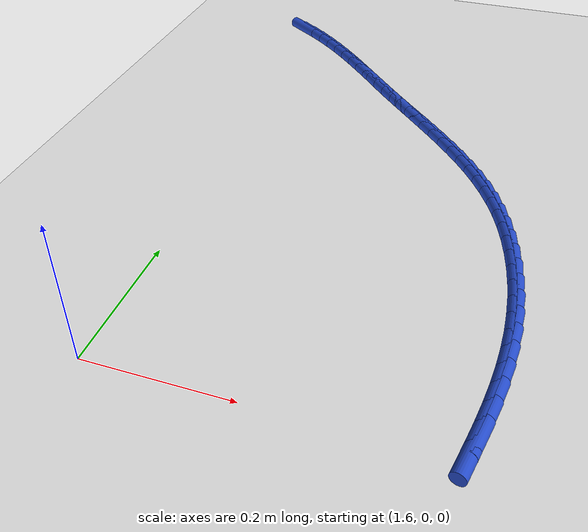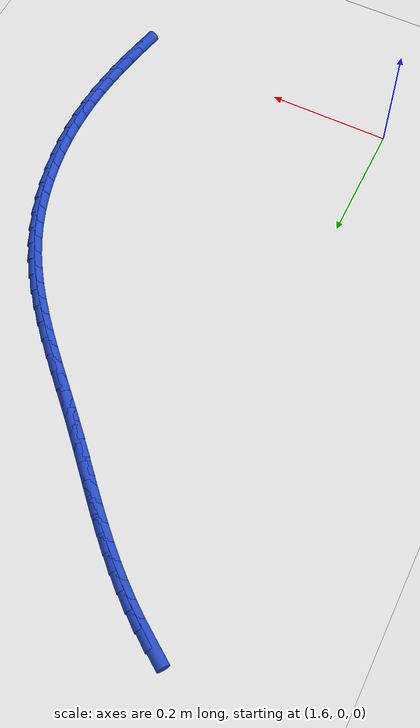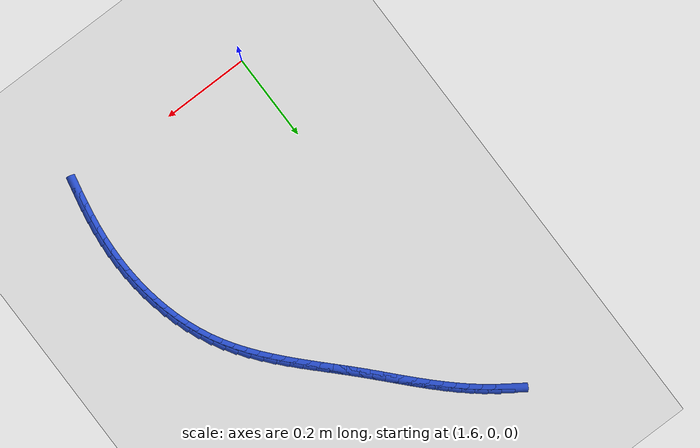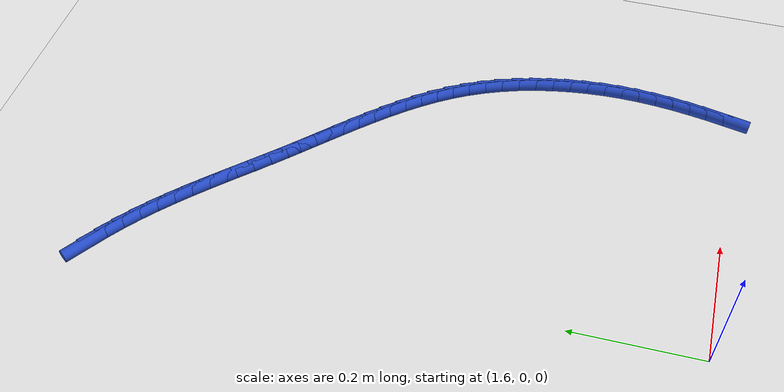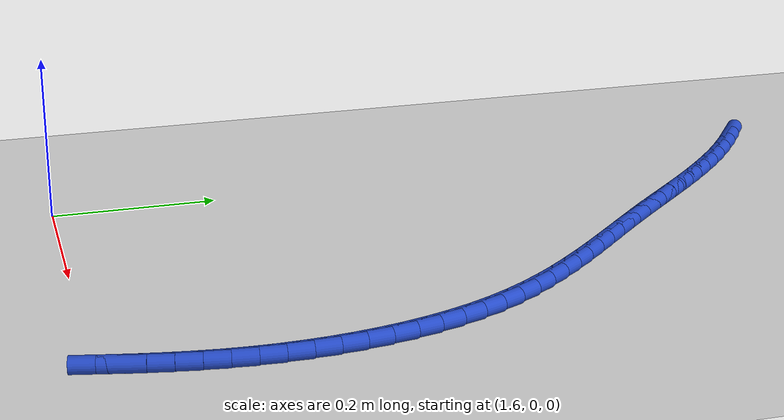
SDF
<sdf version="1.6">
 <world name="default">
  <model name="ground_plane">
   <static>1</static>
   <link name="link">
    <collision name="collision">
     <geometry><plane><normal>0 0 1</normal><size>100 100</size></plane></geometry>
     <surface><friction><ode><mu>100</mu><mu2>50</mu2></ode></friction></surface>
    </collision>
    <visual name="visual">
     <cast_shadows>0</cast_shadows>
     <geometry><plane><normal>0 0 1</normal><size>100 100</size></plane></geometry>
     <material>
      <script><uri>file://media/materials/scripts/gazebo.material</uri><name>Gazebo/WhiteGlow</name></script>
     </material>
    </visual>
   </link>
  </model>
  <model name="line">
   <link name="link_77">
    <pose>1.5682867667261404 0.9114962757041402 0.01 0 1.57 -0.6044896652329141</pose>
    <collision name="collision">
     <geometry><cylinder><radius>0.01</radius><length>0.08</length></cylinder></geometry>
    </collision>
    <visual name="visual">
     <material>
      <script><name>Gazebo/Blue</name><uri>file://media/materials/scripts/gazebo.material</uri></script>
     </material>
     <geometry><cylinder><radius>0.01</radius><length>0.08</length></cylinder></geometry>
    </visual>
   </link>
   <link name="link_78">
    <pose>1.592056744550094 0.8950772067291684 0.01 0 1.57 -0.6470245929640308</pose>
    <collision name="collision">
     <geometry><cylinder><radius>0.01</radius><length>0.08</length></cylinder></geometry>
    </collision>
    <visual name="visual">
     <material>
      <script><name>Gazebo/Blue</name><uri>file://media/materials/scripts/gazebo.material</uri></script>
     </material>
     <geometry><cylinder><radius>0.01</radius><length>0.08</length></cylinder></geometry>
    </visual>
   </link>
   <link name="link_79">
    <pose>1.615005606845643 0.8777388810431573 0.01 0 1.57 -0.6879267266521453</pose>
    <collision name="collision">
     <geometry><cylinder><radius>0.01</radius><length>0.08</length></cylinder></geometry>
    </collision>
    <visual name="visual">
     <material>
      <script><name>Gazebo/Blue</name><uri>file://media/materials/scripts/gazebo.material</uri></script>
     </material>
     <geometry><cylinder><radius>0.01</radius><length>0.08</length></cylinder></geometry>
    </visual>
   </link>
   <link name="link_80">
    <pose>1.6371027071436326 0.8595782353255519 0.01 0 1.57 -0.7242293383095271</pose>
    <collision name="collision">
     <geometry><cylinder><radius>0.01</radius><length>0.08</length></cylinder></geometry>
    </collision>
    <visual name="visual">
     <material>
      <script><name>Gazebo/Blue</name><uri>file://media/materials/scripts/gazebo.material</uri></script>
     </material>
     <geometry><cylinder><radius>0.01</radius><length>0.08</length></cylinder></geometry>
    </visual>
   </link>
   <link name="link_81">
    <pose>1.6584449856113266 0.840699313508609 0.01 0 1.57 -0.7549935278005324</pose>
    <collision name="collision">
     <geometry><cylinder><radius>0.01</radius><length>0.08</length></cylinder></geometry>
    </collision>
    <visual name="visual">
     <material>
      <script><name>Gazebo/Blue</name><uri>file://media/materials/scripts/gazebo.material</uri></script>
     </material>
     <geometry><cylinder><radius>0.01</radius><length>0.08</length></cylinder></geometry>
    </visual>
   </link>
   <link name="link_82">
    <pose>1.679159292805781 0.8212078256920491 0.01 0 1.57 -0.7800553993562066</pose>
    <collision name="collision">
     <geometry><cylinder><radius>0.01</radius><length>0.08</length></cylinder></geometry>
    </collision>
    <visual name="visual">
     <material>
      <script><name>Gazebo/Blue</name><uri>file://media/materials/scripts/gazebo.material</uri></script>
     </material>
     <geometry><cylinder><radius>0.01</radius><length>0.08</length></cylinder></geometry>
    </visual>
   </link>
   <link name="link_83">
    <pose>1.69937247928405 0.8012094819755896 0.01 0 1.57 -0.7993285596081043</pose>
    <collision name="collision">
     <geometry><cylinder><radius>0.01</radius><length>0.08</length></cylinder></geometry>
    </collision>
    <visual name="visual">
     <material>
      <script><name>Gazebo/Blue</name><uri>file://media/materials/scripts/gazebo.material</uri></script>
     </material>
     <geometry><cylinder><radius>0.01</radius><length>0.08</length></cylinder></geometry>
    </visual>
   </link>
   <link name="link_84">
    <pose>1.71921139560319 0.7808099924589503 0.01 0 1.57 -0.8127809053826225</pose>
    <collision name="collision">
     <geometry><cylinder><radius>0.01</radius><length>0.08</length></cylinder></geometry>
    </collision>
    <visual name="visual">
     <material>
      <script><name>Gazebo/Blue</name><uri>file://media/materials/scripts/gazebo.material</uri></script>
     </material>
     <geometry><cylinder><radius>0.01</radius><length>0.08</length></cylinder></geometry>
    </visual>
   </link>
   <link name="link_85">
    <pose>1.7388028923202565 0.7601150672418497 0.01 0 1.57 -0.8204155094203941</pose>
    <collision name="collision">
     <geometry><cylinder><radius>0.01</radius><length>0.08</length></cylinder></geometry>
    </collision>
    <visual name="visual">
     <material>
      <script><name>Gazebo/Blue</name><uri>file://media/materials/scripts/gazebo.material</uri></script>
     </material>
     <geometry><cylinder><radius>0.01</radius><length>0.08</length></cylinder></geometry>
    </visual>
   </link>
   <link name="link_86">
    <pose>1.7582738199923031 0.7392304164240063 0.01 0 1.57 -0.8222568453401549</pose>
    <collision name="collision">
     <geometry><cylinder><radius>0.01</radius><length>0.08</length></cylinder></geometry>
    </collision>
    <visual name="visual">
     <material>
      <script><name>Gazebo/Blue</name><uri>file://media/materials/scripts/gazebo.material</uri></script>
     </material>
     <geometry><cylinder><radius>0.01</radius><length>0.08</length></cylinder></geometry>
    </visual>
   </link>
   <link name="link_87">
    <pose>1.7777510291763865 0.7182617501051395 0.01 0 1.57 -0.8183428227736026</pose>
    <collision name="collision">
     <geometry><cylinder><radius>0.01</radius><length>0.08</length></cylinder></geometry>
    </collision>
    <visual name="visual">
     <material>
      <script><name>Gazebo/Blue</name><uri>file://media/materials/scripts/gazebo.material</uri></script>
     </material>
     <geometry><cylinder><radius>0.01</radius><length>0.08</length></cylinder></geometry>
    </visual>
   </link>
   <link name="link_88">
    <pose>1.7973613704295617 0.6973147783849672 0.01 0 1.57 -0.8088087375363433</pose>
    <collision name="collision">
     <geometry><cylinder><radius>0.01</radius><length>0.08</length></cylinder></geometry>
    </collision>
    <visual name="visual">
     <material>
      <script><name>Gazebo/Blue</name><uri>file://media/materials/scripts/gazebo.material</uri></script>
     </material>
     <geometry><cylinder><radius>0.01</radius><length>0.08</length></cylinder></geometry>
    </visual>
   </link>
   <link name="link_89">
    <pose>1.8172296518475908 0.6764937631135937 0.01 0 1.57 -0.7984078438088076</pose>
    <collision name="collision">
     <geometry><cylinder><radius>0.01</radius><length>0.08</length></cylinder></geometry>
    </collision>
    <visual name="visual">
     <material>
      <script><name>Gazebo/Blue</name><uri>file://media/materials/scripts/gazebo.material</uri></script>
     </material>
     <geometry><cylinder><radius>0.01</radius><length>0.08</length></cylinder></geometry>
    </visual>
   </link>
   <link name="link_90">
    <pose>1.8373688205118024 0.6558236487647257 0.01 0 1.57 -0.7941465284990479</pose>
    <collision name="collision">
     <geometry><cylinder><radius>0.01</radius><length>0.08</length></cylinder></geometry>
    </collision>
    <visual name="visual">
     <material>
      <script><name>Gazebo/Blue</name><uri>file://media/materials/scripts/gazebo.material</uri></script>
     </material>
     <geometry><cylinder><radius>0.01</radius><length>0.08</length></cylinder></geometry>
    </visual>
   </link>
   <link name="link_91">
    <pose>1.8576243195740088 0.6352106076706552 0.01 0 1.57 -0.7965571766507521</pose>
    <collision name="collision">
     <geometry><cylinder><radius>0.01</radius><length>0.08</length></cylinder></geometry>
    </collision>
    <visual name="visual">
     <material>
      <script><name>Gazebo/Blue</name><uri>file://media/materials/scripts/gazebo.material</uri></script>
     </material>
     <geometry><cylinder><radius>0.01</radius><length>0.08</length></cylinder></geometry>
    </visual>
   </link>
   <link name="link_92">
    <pose>1.8778278492958915 0.6145510674818936 0.01 0 1.57 -0.8056526328374921</pose>
    <collision name="collision">
     <geometry><cylinder><radius>0.01</radius><length>0.08</length></cylinder></geometry>
    </collision>
    <visual name="visual">
     <material>
      <script><name>Gazebo/Blue</name><uri>file://media/materials/scripts/gazebo.material</uri></script>
     </material>
     <geometry><cylinder><radius>0.01</radius><length>0.08</length></cylinder></geometry>
    </visual>
   </link>
   <link name="link_93">
    <pose>1.8978111099391344 0.5937414558489542 0.01 0 1.57 -0.821502431916797</pose>
    <collision name="collision">
     <geometry><cylinder><radius>0.01</radius><length>0.08</length></cylinder></geometry>
    </collision>
    <visual name="visual">
     <material>
      <script><name>Gazebo/Blue</name><uri>file://media/materials/scripts/gazebo.material</uri></script>
     </material>
     <geometry><cylinder><radius>0.01</radius><length>0.08</length></cylinder></geometry>
    </visual>
   </link>
   <link name="link_94">
    <pose>1.9174058017654207 0.5726782004223492 0.01 0 1.57 -0.8442216882590298</pose>
    <collision name="collision">
     <geometry><cylinder><radius>0.01</radius><length>0.08</length></cylinder></geometry>
    </collision>
    <visual name="visual">
     <material>
      <script><name>Gazebo/Blue</name><uri>file://media/materials/scripts/gazebo.material</uri></script>
     </material>
     <geometry><cylinder><radius>0.01</radius><length>0.08</length></cylinder></geometry>
    </visual>
   </link>
   <link name="link_95">
    <pose>1.9364436250364327 0.5512577288525914 0.01 0 1.57 -0.8739506819774797</pose>
    <collision name="collision">
     <geometry><cylinder><radius>0.01</radius><length>0.08</length></cylinder></geometry>
    </collision>
    <visual name="visual">
     <material>
      <script><name>Gazebo/Blue</name><uri>file://media/materials/scripts/gazebo.material</uri></script>
     </material>
     <geometry><cylinder><radius>0.01</radius><length>0.08</length></cylinder></geometry>
    </visual>
   </link>
   <link name="link_96">
    <pose>1.9547562800138545 0.5293764687901931 0.01 0 1.57 -0.9108232896030182</pose>
    <collision name="collision">
     <geometry><cylinder><radius>0.01</radius><length>0.08</length></cylinder></geometry>
    </collision>
    <visual name="visual">
     <material>
      <script><name>Gazebo/Blue</name><uri>file://media/materials/scripts/gazebo.material</uri></script>
     </material>
     <geometry><cylinder><radius>0.01</radius><length>0.08</length></cylinder></geometry>
    </visual>
   </link>
   <link name="link_97">
    <pose>1.9721754669593676 0.5069308478856672 0.01 0 1.57 -0.9549224907482865</pose>
    <collision name="collision">
     <geometry><cylinder><radius>0.01</radius><length>0.08</length></cylinder></geometry>
    </collision>
    <visual name="visual">
     <material>
      <script><name>Gazebo/Blue</name><uri>file://media/materials/scripts/gazebo.material</uri></script>
     </material>
     <geometry><cylinder><radius>0.01</radius><length>0.08</length></cylinder></geometry>
    </visual>
   </link>
   <link name="link_98">
    <pose>1.988532886134656 0.4838172937895262 0.01 0 1.57 -1.006222533704158</pose>
    <collision name="collision">
     <geometry><cylinder><radius>0.01</radius><length>0.08</length></cylinder></geometry>
    </collision>
    <visual name="visual">
     <material>
      <script><name>Gazebo/Blue</name><uri>file://media/materials/scripts/gazebo.material</uri></script>
     </material>
     <geometry><cylinder><radius>0.01</radius><length>0.08</length></cylinder></geometry>
    </visual>
   </link>
   <link name="link_99">
    <pose>2.0036602378014043 0.45993223415228246 0.01 0 1.57 -1.0645160896337054</pose>
    <collision name="collision">
     <geometry><cylinder><radius>0.01</radius><length>0.08</length></cylinder></geometry>
    </collision>
    <visual name="visual">
     <material>
      <script><name>Gazebo/Blue</name><uri>file://media/materials/scripts/gazebo.material</uri></script>
     </material>
     <geometry><cylinder><radius>0.01</radius><length>0.08</length></cylinder></geometry>
    </visual>
   </link>
   <link name="link_100">
    <pose>2.0173893106649996 0.43517220035298604 0.01 0 1.57 -1.1270447550328038</pose>
    <collision name="collision">
     <geometry><cylinder><radius>0.01</radius><length>0.08</length></cylinder></geometry>
    </collision>
    <visual name="visual">
     <material>
      <script><name>Gazebo/Blue</name><uri>file://media/materials/scripts/gazebo.material</uri></script>
     </material>
     <geometry><cylinder><radius>0.01</radius><length>0.08</length></cylinder></geometry>
    </visual>
   </link>
   <link name="link_101">
    <pose>2.0295986090523632 0.40948851278002163 0.01 0 1.57 -1.1874708707059545</pose>
    <collision name="collision">
     <geometry><cylinder><radius>0.01</radius><length>0.08</length></cylinder></geometry>
    </collision>
    <visual name="visual">
     <material>
      <script><name>Gazebo/Blue</name><uri>file://media/materials/scripts/gazebo.material</uri></script>
     </material>
     <geometry><cylinder><radius>0.01</radius><length>0.08</length></cylinder></geometry>
    </visual>
   </link>
   <link name="link_102">
    <pose>2.0402899580498115 0.3829771248592168 0.01 0 1.57 -1.2450122135676451</pose>
    <collision name="collision">
     <geometry><cylinder><radius>0.01</radius><length>0.08</length></cylinder></geometry>
    </collision>
    <visual name="visual">
     <material>
      <script><name>Gazebo/Blue</name><uri>file://media/materials/scripts/gazebo.material</uri></script>
     </material>
     <geometry><cylinder><radius>0.01</radius><length>0.08</length></cylinder></geometry>
    </visual>
   </link>
   <link name="link_103">
    <pose>2.0494852956665697 0.35575757885209813 0.01 0 1.57 -1.2999571503799898</pose>
    <collision name="collision">
     <geometry><cylinder><radius>0.01</radius><length>0.08</length></cylinder></geometry>
    </collision>
    <visual name="visual">
     <material>
      <script><name>Gazebo/Blue</name><uri>file://media/materials/scripts/gazebo.material</uri></script>
     </material>
     <geometry><cylinder><radius>0.01</radius><length>0.08</length></cylinder></geometry>
    </visual>
   </link>
   <link name="link_104">
    <pose>2.0572065599118585 0.3279494170201931 0.01 0 1.57 -1.3526228651706058</pose>
    <collision name="collision">
     <geometry><cylinder><radius>0.01</radius><length>0.08</length></cylinder></geometry>
    </collision>
    <visual name="visual">
     <material>
      <script><name>Gazebo/Blue</name><uri>file://media/materials/scripts/gazebo.material</uri></script>
     </material>
     <geometry><cylinder><radius>0.01</radius><length>0.08</length></cylinder></geometry>
    </visual>
   </link>
   <link name="link_105">
    <pose>2.0634756887949033 0.29967218162502834 0.01 0 1.57 -1.4033440092761933</pose>
    <collision name="collision">
     <geometry><cylinder><radius>0.01</radius><length>0.08</length></cylinder></geometry>
    </collision>
    <visual name="visual">
     <material>
      <script><name>Gazebo/Blue</name><uri>file://media/materials/scripts/gazebo.material</uri></script>
     </material>
     <geometry><cylinder><radius>0.01</radius><length>0.08</length></cylinder></geometry>
    </visual>
   </link>
   <link name="link_106">
    <pose>2.0683146203249274 0.2710454149281315 0.01 0 1.57 -1.4524654604361429</pose>
    <collision name="collision">
     <geometry><cylinder><radius>0.01</radius><length>0.08</length></cylinder></geometry>
    </collision>
    <visual name="visual">
     <material>
      <script><name>Gazebo/Blue</name><uri>file://media/materials/scripts/gazebo.material</uri></script>
     </material>
     <geometry><cylinder><radius>0.01</radius><length>0.08</length></cylinder></geometry>
    </visual>
   </link>
   <link name="link_107">
    <pose>2.0717452925111535 0.2421886591910294 0.01 0 1.57 -1.500338477062228</pose>
    <collision name="collision">
     <geometry><cylinder><radius>0.01</radius><length>0.08</length></cylinder></geometry>
    </collision>
    <visual name="visual">
     <material>
      <script><name>Gazebo/Blue</name><uri>file://media/materials/scripts/gazebo.material</uri></script>
     </material>
     <geometry><cylinder><radius>0.01</radius><length>0.08</length></cylinder></geometry>
    </visual>
   </link>
   <link name="link_108">
    <pose>2.0737896433628067 0.2132214566752487 0.01 0 1.57 -1.5473195643921438</pose>
    <collision name="collision">
     <geometry><cylinder><radius>0.01</radius><length>0.08</length></cylinder></geometry>
    </collision>
    <visual name="visual">
     <material>
      <script><name>Gazebo/Blue</name><uri>file://media/materials/scripts/gazebo.material</uri></script>
     </material>
     <geometry><cylinder><radius>0.01</radius><length>0.08</length></cylinder></geometry>
    </visual>
   </link>
   <link name="link_109">
    <pose>2.074469610889108 0.18426334964231714 0.01 0 1.57 1.5478211824987125</pose>
    <collision name="collision">
     <geometry><cylinder><radius>0.01</radius><length>0.08</length></cylinder></geometry>
    </collision>
    <visual name="visual">
     <material>
      <script><name>Gazebo/Blue</name><uri>file://media/materials/scripts/gazebo.material</uri></script>
     </material>
     <geometry><cylinder><radius>0.01</radius><length>0.08</length></cylinder></geometry>
    </visual>
   </link>
   <link name="link_110">
    <pose>2.0738071331034487 0.1554338803493445 0.01 0 1.57 1.5024364240119015</pose>
    <collision name="collision">
     <geometry><cylinder><radius>0.01</radius><length>0.08</length></cylinder></geometry>
    </collision>
    <visual name="visual">
     <material>
      <script><name>Gazebo/Blue</name><uri>file://media/materials/scripts/gazebo.material</uri></script>
     </material>
     <geometry><cylinder><radius>0.01</radius><length>0.08</length></cylinder></geometry>
    </visual>
   </link>
   <link name="link_111">
    <pose>2.0718485016686126 0.12682676624305533 0.01 0 1.57 1.4616019425451232</pose>
    <collision name="collision">
     <geometry><cylinder><radius>0.01</radius><length>0.08</length></cylinder></geometry>
    </collision>
    <visual name="visual">
     <material>
      <script><name>Gazebo/Blue</name><uri>file://media/materials/scripts/gazebo.material</uri></script>
     </material>
     <geometry><cylinder><radius>0.01</radius><length>0.08</length></cylinder></geometry>
    </visual>
   </link>
   <link name="link_112">
    <pose>2.0687358052528433 0.09843414083664428 0.01 0 1.57 1.426434370698845</pose>
    <collision name="collision">
     <geometry><cylinder><radius>0.01</radius><length>0.08</length></cylinder></geometry>
    </collision>
    <visual name="visual">
     <material>
      <script><name>Gazebo/Blue</name><uri>file://media/materials/scripts/gazebo.material</uri></script>
     </material>
     <geometry><cylinder><radius>0.01</radius><length>0.08</length></cylinder></geometry>
    </visual>
   </link>
   <link name="link_113">
    <pose>2.0646346840706022 0.07022316338973925 0.01 0 1.57 1.3971003073697301</pose>
    <collision name="collision">
     <geometry><cylinder><radius>0.01</radius><length>0.08</length></cylinder></geometry>
    </collision>
    <visual name="visual">
     <material>
      <script><name>Gazebo/Blue</name><uri>file://media/materials/scripts/gazebo.material</uri></script>
     </material>
     <geometry><cylinder><radius>0.01</radius><length>0.08</length></cylinder></geometry>
    </visual>
   </link>
   <link name="link_114">
    <pose>2.0597107783363486 0.042160993161966545 0.01 0 1.57 1.3736825975543772</pose>
    <collision name="collision">
     <geometry><cylinder><radius>0.01</radius><length>0.08</length></cylinder></geometry>
    </collision>
    <visual name="visual">
     <material>
      <script><name>Gazebo/Blue</name><uri>file://media/materials/scripts/gazebo.material</uri></script>
     </material>
     <geometry><cylinder><radius>0.01</radius><length>0.08</length></cylinder></geometry>
    </visual>
   </link>
   <link name="link_115">
    <pose>2.0541297282645434 0.01421478941295401 0.01 0 1.57 1.3562091991673766</pose>
    <collision name="collision">
     <geometry><cylinder><radius>0.01</radius><length>0.08</length></cylinder></geometry>
    </collision>
    <visual name="visual">
     <material>
      <script><name>Gazebo/Blue</name><uri>file://media/materials/scripts/gazebo.material</uri></script>
     </material>
     <geometry><cylinder><radius>0.01</radius><length>0.08</length></cylinder></geometry>
    </visual>
   </link>
  </model>
 </world>
</sdf>
